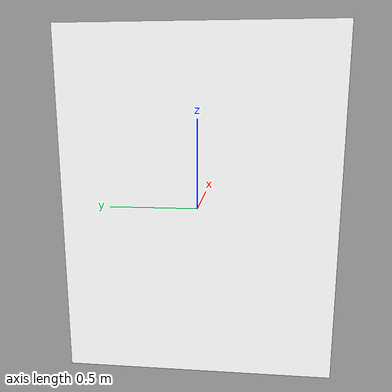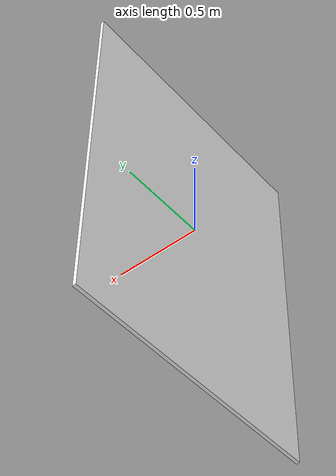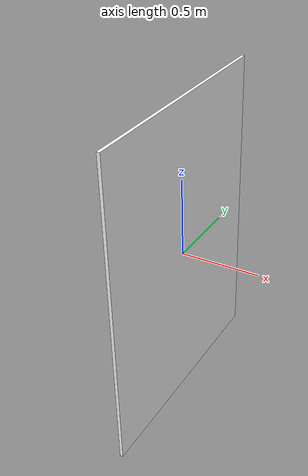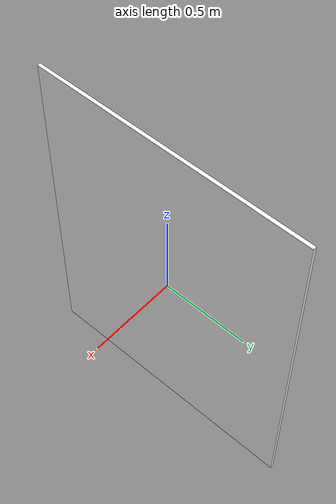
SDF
<?xml version="1.0"?>
<sdf version='1.4'>
  <model name='window_curtains'>
    <link name="link">
      <visual name="visual">
        <geometry>
          <box>
            <size>0.02 1.5676 2</size>
          </box>
        </geometry>
        <material>
          <pbr>
            <metal>
              <emissive_map>textures/window_curtains.png</emissive_map>
            <metalness>0.0</metalness><roughness>0.95</roughness>
            </metal>
          </pbr>
          <ambient>1 1 1 1</ambient>
          <diffuse>1 1 1 1</diffuse>
          <specular>1 1 1 1</specular>
          <emissive>0.4 0.4 0.4 1</emissive>
        </material>
      </visual>
    </link>
    <static>1</static>
    <allow_auto_disable>1</allow_auto_disable>
  </model>
</sdf>
